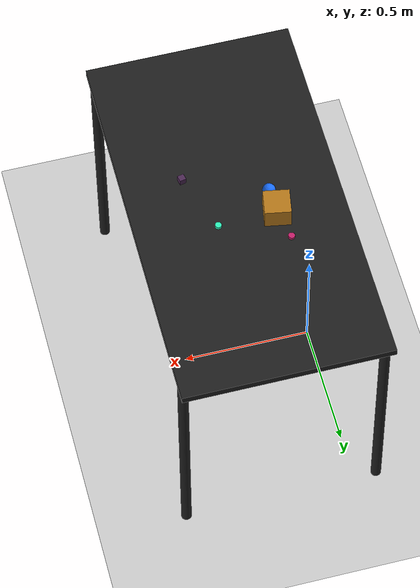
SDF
<?xml version="1.0" ?>
<sdf version="1.6">
  <world name="arm_world">
    <plugin filename="gz-sim-physics-system" name="gz::sim::systems::Physics">
      <engine>
        <filename>libgz-physics-bullet-featherstone-plugin.so</filename>
      </engine>
    </plugin>
    <plugin filename="gz-sim-user-commands-system" name="gz::sim::systems::UserCommands"/>
    <plugin filename="gz-sim-scene-broadcaster-system" name="gz::sim::systems::SceneBroadcaster"/>
    <plugin filename="gz-sim-sensors-system" name="gz::sim::systems::Sensors">
      <render_engine>ogre2</render_engine>
    </plugin>
    <gravity>0.0 0.0 -9.8</gravity>
    <scene>
      <shadows>false</shadows>
    </scene>
    <gui>
      <camera name="user_camera">
        <pose>0.75 -0.75 1.4 0 0.29 2.21</pose>
      </camera>
    </gui>
    <include>
      <uri>https://fuel.gazebosim.org/1.0/OpenRobotics/models/Sun</uri>
    </include>
    <model name="table">
      <static>true</static>
      <include>
        <uri>model://table</uri>
      </include>
      <pose>0.29 0 0 0 0 1.5708</pose>
    </model>
    <model name="ground_plane">
      <static>true</static>
      <link name="link">
        <collision name="collision">
          <geometry>
            <plane>
              <normal>0 0 1</normal>
            </plane>
          </geometry>
          <surface>
            <friction>
              <ode>
                <mu>1.0</mu>
                <mu2>1.0</mu2>
              </ode>
            </friction>
          </surface>
        </collision>
        <visual name="visual">
          <geometry>
            <plane>
              <normal>0 0 1</normal>
              <size>100 100</size>
            </plane>
          </geometry>
          <material>
            <ambient>0.8 0.8 0.8 1</ambient>
            <diffuse>0.8 0.8 0.8 1</diffuse>
            <specular>0.8 0.8 0.8 1</specular>
          </material>
        </visual>
      </link>
    </model>
    <model name="sphere_m_0">
      <pose>0.162 -0.018 1.05 0 0 2.4</pose>
      <link name="sphere_m_0_link">
        <inertial>
          <mass>0.05</mass>
          <inertia>
            <ixx>2.04e-7</ixx>
            <iyy>2.04e-7</iyy>
            <izz>3.9e-8</izz>
            <ixy>0</ixy>
            <ixz>0</ixz>
            <iyz>0</iyz>
          </inertia>
        </inertial>
        <collision name="sphere_m_0_collision">
          <geometry>
            <sphere>
              <radius>0.025</radius>
            </sphere>
          </geometry>
          <surface>
            <friction>
              <ode>
                <mu>0.8</mu>
                <mu2>0.8</mu2>
                <fdir1>0 0 1</fdir1>
                <slip1>0.001</slip1>
                <slip2>0.001</slip2>
              </ode>
              <torsional>
                <coefficient>0.1</coefficient>
                <surface_radius>0.015</surface_radius>
                <use_patch_radius>true</use_patch_radius>
              </torsional>
            </friction>
            <contact>
              <ode>
                <kp>1e5</kp>
                <kd>10</kd>
                <max_vel>0.1</max_vel>
                <min_depth>0.001</min_depth>
                <soft_cfm>0.01</soft_cfm>
                <soft_erp>0.2</soft_erp>
              </ode>
            </contact>
            <bounce>
              <restitution_coefficient>0.2</restitution_coefficient>
              <threshold>0.01</threshold>
            </bounce>
          </surface>
        </collision>
        <visual name="sphere_m_0_visual">
          <geometry>
            <sphere>
              <radius>0.025</radius>
            </sphere>
          </geometry>
          <material>
            <ambient>0.1 0.43 0.99 1</ambient>
            <diffuse>0.1 0.43 0.99 1</diffuse>
          </material>
        </visual>
        <velocity_decay>
          <linear>1</linear>
          <angular>1</angular>
        </velocity_decay>
      </link>
    </model>
    <model name="cylinder_s_1">
      <pose>0.135 0.202 1.05 0 0 1.41</pose>
      <link name="cylinder_s_1_link">
        <inertial>
          <mass>0.05</mass>
          <inertia>
            <ixx>2.04e-7</ixx>
            <iyy>2.04e-7</iyy>
            <izz>3.9e-8</izz>
            <ixy>0</ixy>
            <ixz>0</ixz>
            <iyz>0</iyz>
          </inertia>
        </inertial>
        <collision name="cylinder_s_1_collision">
          <geometry>
            <cylinder>
              <radius>0.0125</radius>
              <length>0.0125</length>
            </cylinder>
          </geometry>
          <surface>
            <friction>
              <ode>
                <mu>0.8</mu>
                <mu2>0.8</mu2>
                <fdir1>0 0 1</fdir1>
                <slip1>0.001</slip1>
                <slip2>0.001</slip2>
              </ode>
              <torsional>
                <coefficient>0.1</coefficient>
                <surface_radius>0.015</surface_radius>
                <use_patch_radius>true</use_patch_radius>
              </torsional>
            </friction>
            <contact>
              <ode>
                <kp>1e5</kp>
                <kd>10</kd>
                <max_vel>0.1</max_vel>
                <min_depth>0.001</min_depth>
                <soft_cfm>0.01</soft_cfm>
                <soft_erp>0.2</soft_erp>
              </ode>
            </contact>
            <bounce>
              <restitution_coefficient>0.2</restitution_coefficient>
              <threshold>0.01</threshold>
            </bounce>
          </surface>
        </collision>
        <visual name="cylinder_s_1_visual">
          <geometry>
            <cylinder>
              <radius>0.0125</radius>
              <length>0.0125</length>
            </cylinder>
          </geometry>
          <material>
            <ambient>0.78 0.12 0.42 1</ambient>
            <diffuse>0.78 0.12 0.42 1</diffuse>
          </material>
        </visual>
        <velocity_decay>
          <linear>1</linear>
          <angular>1</angular>
        </velocity_decay>
      </link>
    </model>
    <model name="cube_s_2">
      <pose>0.464 -0.145 1.05 0 0 3.35</pose>
      <link name="cube_s_2_link">
        <inertial>
          <mass>0.05</mass>
          <inertia>
            <ixx>2.04e-7</ixx>
            <iyy>2.04e-7</iyy>
            <izz>3.9e-8</izz>
            <ixy>0</ixy>
            <ixz>0</ixz>
            <iyz>0</iyz>
          </inertia>
        </inertial>
        <collision name="cube_s_2_collision">
          <geometry>
            <box>
              <size>0.025 0.025 0.025</size>
            </box>
          </geometry>
          <surface>
            <friction>
              <ode>
                <mu>0.8</mu>
                <mu2>0.8</mu2>
                <fdir1>0 0 1</fdir1>
                <slip1>0.001</slip1>
                <slip2>0.001</slip2>
              </ode>
              <torsional>
                <coefficient>0.1</coefficient>
                <surface_radius>0.015</surface_radius>
                <use_patch_radius>true</use_patch_radius>
              </torsional>
            </friction>
            <contact>
              <ode>
                <kp>1e5</kp>
                <kd>10</kd>
                <max_vel>0.1</max_vel>
                <min_depth>0.001</min_depth>
                <soft_cfm>0.01</soft_cfm>
                <soft_erp>0.2</soft_erp>
              </ode>
            </contact>
            <bounce>
              <restitution_coefficient>0.2</restitution_coefficient>
              <threshold>0.01</threshold>
            </bounce>
          </surface>
        </collision>
        <visual name="cube_s_2_visual">
          <geometry>
            <box>
              <size>0.025 0.025 0.025</size>
            </box>
          </geometry>
          <material>
            <ambient>0.3 0.16 0.33 1</ambient>
            <diffuse>0.3 0.16 0.33 1</diffuse>
          </material>
        </visual>
        <velocity_decay>
          <linear>1</linear>
          <angular>1</angular>
        </velocity_decay>
      </link>
    </model>
    <model name="cylinder_s_3">
      <pose>0.384 0.089 1.05 0 0 4.11</pose>
      <link name="cylinder_s_3_link">
        <inertial>
          <mass>0.05</mass>
          <inertia>
            <ixx>2.04e-7</ixx>
            <iyy>2.04e-7</iyy>
            <izz>3.9e-8</izz>
            <ixy>0</ixy>
            <ixz>0</ixz>
            <iyz>0</iyz>
          </inertia>
        </inertial>
        <collision name="cylinder_s_3_collision">
          <geometry>
            <cylinder>
              <radius>0.0125</radius>
              <length>0.0125</length>
            </cylinder>
          </geometry>
          <surface>
            <friction>
              <ode>
                <mu>0.8</mu>
                <mu2>0.8</mu2>
                <fdir1>0 0 1</fdir1>
                <slip1>0.001</slip1>
                <slip2>0.001</slip2>
              </ode>
              <torsional>
                <coefficient>0.1</coefficient>
                <surface_radius>0.015</surface_radius>
                <use_patch_radius>true</use_patch_radius>
              </torsional>
            </friction>
            <contact>
              <ode>
                <kp>1e5</kp>
                <kd>10</kd>
                <max_vel>0.1</max_vel>
                <min_depth>0.001</min_depth>
                <soft_cfm>0.01</soft_cfm>
                <soft_erp>0.2</soft_erp>
              </ode>
            </contact>
            <bounce>
              <restitution_coefficient>0.2</restitution_coefficient>
              <threshold>0.01</threshold>
            </bounce>
          </surface>
        </collision>
        <visual name="cylinder_s_3_visual">
          <geometry>
            <cylinder>
              <radius>0.0125</radius>
              <length>0.0125</length>
            </cylinder>
          </geometry>
          <material>
            <ambient>0.17 0.96 0.73 1</ambient>
            <diffuse>0.17 0.96 0.73 1</diffuse>
          </material>
        </visual>
        <velocity_decay>
          <linear>1</linear>
          <angular>1</angular>
        </velocity_decay>
      </link>
    </model>
    <model name="cube_l_4">
      <pose>0.156 0.072 1.05 0 0 1.39</pose>
      <link name="cube_l_4_link">
        <inertial>
          <mass>0.05</mass>
          <inertia>
            <ixx>2.04e-7</ixx>
            <iyy>2.04e-7</iyy>
            <izz>3.9e-8</izz>
            <ixy>0</ixy>
            <ixz>0</ixz>
            <iyz>0</iyz>
          </inertia>
        </inertial>
        <collision name="cube_l_4_collision">
          <geometry>
            <box>
              <size>0.1 0.1 0.1</size>
            </box>
          </geometry>
          <surface>
            <friction>
              <ode>
                <mu>0.8</mu>
                <mu2>0.8</mu2>
                <fdir1>0 0 1</fdir1>
                <slip1>0.001</slip1>
                <slip2>0.001</slip2>
              </ode>
              <torsional>
                <coefficient>0.1</coefficient>
                <surface_radius>0.015</surface_radius>
                <use_patch_radius>true</use_patch_radius>
              </torsional>
            </friction>
            <contact>
              <ode>
                <kp>1e5</kp>
                <kd>10</kd>
                <max_vel>0.1</max_vel>
                <min_depth>0.001</min_depth>
                <soft_cfm>0.01</soft_cfm>
                <soft_erp>0.2</soft_erp>
              </ode>
            </contact>
            <bounce>
              <restitution_coefficient>0.2</restitution_coefficient>
              <threshold>0.01</threshold>
            </bounce>
          </surface>
        </collision>
        <visual name="cube_l_4_visual">
          <geometry>
            <box>
              <size>0.1 0.1 0.1</size>
            </box>
          </geometry>
          <material>
            <ambient>0.71 0.47 0.1 1</ambient>
            <diffuse>0.71 0.47 0.1 1</diffuse>
          </material>
        </visual>
        <velocity_decay>
          <linear>1</linear>
          <angular>1</angular>
        </velocity_decay>
      </link>
    </model>
  </world>
</sdf>

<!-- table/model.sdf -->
<sdf version="1.5">
  <model name="table">
    <static>true</static>
    <link name="link">
      <collision name="surface">
        <pose>0 0 1.0 0 0 0</pose>
        <geometry>
          <box>
            <size>1.5 0.8 0.03</size>
          </box>
        </geometry>
        <surface>
          <friction>
            <ode>
              <mu>0.6</mu>
              <mu2>0.6</mu2>
            </ode>
          </friction>
        </surface>
      </collision>
      <visual name="surface">
        <pose>0 0 1.0 0 0 0</pose>
        <geometry>
          <box>
            <size>1.5 0.8 0.03</size>
          </box>
        </geometry>
        <material>
          <script>
            <uri>file://media/materials/scripts/gazebo.material</uri>
            <name>Gazebo/Black</name>
          </script>
        </material>
      </visual>
      <collision name="front_left_leg">
        <pose>0.68 0.38 0.5 0 0 0</pose>
        <geometry>
          <cylinder>
            <radius>0.02</radius>
            <length>1.0</length>
          </cylinder>
        </geometry>
      </collision>
      <visual name="front_left_leg">
        <pose>0.68 0.38 0.5 0 0 0</pose>
        <geometry>
          <cylinder>
            <radius>0.02</radius>
            <length>1.0</length>
          </cylinder>
        </geometry>
        <material>
          <script>
            <uri>file://media/materials/scripts/gazebo.material</uri>
            <name>Gazebo/Black</name>
          </script>
        </material>
      </visual>
      <collision name="front_right_leg">
        <pose>0.68 -0.38 0.5 0 0 0</pose>
        <geometry>
          <cylinder>
            <radius>0.02</radius>
            <length>1.0</length>
          </cylinder>
        </geometry>
      </collision>
      <visual name="front_right_leg">
        <pose>0.68 -0.38 0.5 0 0 0</pose>
        <geometry>
          <cylinder>
            <radius>0.02</radius>
            <length>1.0</length>
          </cylinder>
        </geometry>
        <material>
          <script>
            <uri>file://media/materials/scripts/gazebo.material</uri>
            <name>Gazebo/Black</name>
          </script>
        </material>
      </visual>
      <collision name="back_right_leg">
        <pose>-0.68 -0.38 0.5 0 0 0</pose>
        <geometry>
          <cylinder>
            <radius>0.02</radius>
            <length>1.0</length>
          </cylinder>
        </geometry>
      </collision>
      <visual name="back_right_leg">
        <pose>-0.68 -0.38 0.5 0 0 0</pose>
        <geometry>
          <cylinder>
            <radius>0.02</radius>
            <length>1.0</length>
          </cylinder>
        </geometry>
        <material>
          <script>
            <uri>file://media/materials/scripts/gazebo.material</uri>
            <name>Gazebo/Black</name>
          </script>
        </material>
      </visual>
      <collision name="back_left_leg">
        <pose>-0.68 0.38 0.5 0 0 0</pose>
        <geometry>
          <cylinder>
            <radius>0.02</radius>
            <length>1.0</length>
          </cylinder>
        </geometry>
      </collision>
      <visual name="back_left_leg">
        <pose>-0.68 0.38 0.5 0 0 0</pose>
        <geometry>
          <cylinder>
            <radius>0.02</radius>
            <length>1.0</length>
          </cylinder>
        </geometry>
        <material>
          <script>
            <uri>file://media/materials/scripts/gazebo.material</uri>
            <name>Gazebo/Black</name>
          </script>
        </material>
      </visual>
    </link>
  </model>
</sdf>
